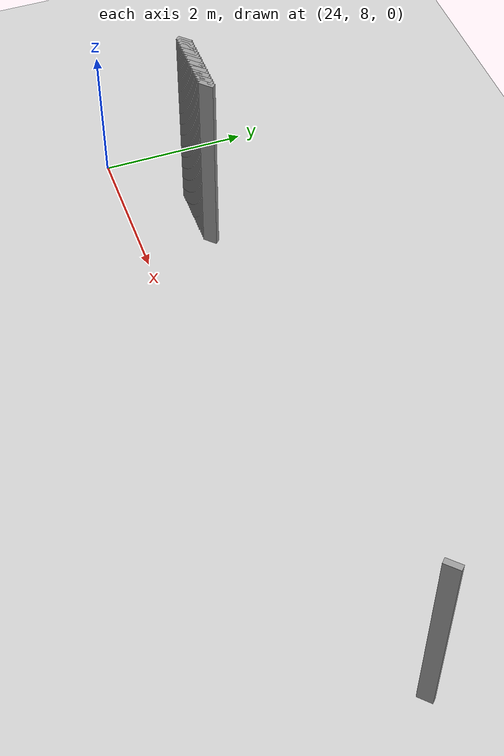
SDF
<sdf version="1.5">
 <world name="default">
  <include><uri>model://ground_plane</uri></include>
  <include><uri>model://sun</uri></include>
  <model name="grey_wall_3583">
   <static>1</static>
   <link name="link">
    <pose>24.95 8.95  1.4 0 0 -0.785398163397</pose>
    <collision name="collision"><geometry><box><size>0.0707106781187 .2  2.8</size></box></geometry></collision>
    <visual name="visual">
     <cast_shadows>0</cast_shadows>
     <geometry><box><size>0.0707106781187 .2  2.8</size></box></geometry>
     <material>
      <script>
       <uri>model://grey_wall/materials/scripts</uri>
       <uri>model://grey_wall/materials/textures</uri>
       <name>vrc/grey_wall</name>
      </script>
     </material>
    </visual>
   </link>
  </model>
  <model name="grey_wall_3584">
   <static>1</static>
   <link name="link">
    <pose>25.0 8.95  1.4 0 0 -0.785398163397</pose>
    <collision name="collision"><geometry><box><size>0.0707106781187 .2  2.8</size></box></geometry></collision>
    <visual name="visual">
     <cast_shadows>0</cast_shadows>
     <geometry><box><size>0.0707106781187 .2  2.8</size></box></geometry>
     <material>
      <script>
       <uri>model://grey_wall/materials/scripts</uri>
       <uri>model://grey_wall/materials/textures</uri>
       <name>vrc/grey_wall</name>
      </script>
     </material>
    </visual>
   </link>
  </model>
  <model name="grey_wall_3585">
   <static>1</static>
   <link name="link">
    <pose>25.05 8.95  1.4 0 0 -0.785398163397</pose>
    <collision name="collision"><geometry><box><size>0.0707106781187 .2  2.8</size></box></geometry></collision>
    <visual name="visual">
     <cast_shadows>0</cast_shadows>
     <geometry><box><size>0.0707106781187 .2  2.8</size></box></geometry>
     <material>
      <script>
       <uri>model://grey_wall/materials/scripts</uri>
       <uri>model://grey_wall/materials/textures</uri>
       <name>vrc/grey_wall</name>
      </script>
     </material>
    </visual>
   </link>
  </model>
  <model name="grey_wall_3586">
   <static>1</static>
   <link name="link">
    <pose>25.1 8.95  1.4 0 0 -0.785398163397</pose>
    <collision name="collision"><geometry><box><size>0.0707106781187 .2  2.8</size></box></geometry></collision>
    <visual name="visual">
     <cast_shadows>0</cast_shadows>
     <geometry><box><size>0.0707106781187 .2  2.8</size></box></geometry>
     <material>
      <script>
       <uri>model://grey_wall/materials/scripts</uri>
       <uri>model://grey_wall/materials/textures</uri>
       <name>vrc/grey_wall</name>
      </script>
     </material>
    </visual>
   </link>
  </model>
  <model name="grey_wall_3587">
   <static>1</static>
   <link name="link">
    <pose>25.15 8.95  1.4 0 0 -0.785398163397</pose>
    <collision name="collision"><geometry><box><size>0.0707106781187 .2  2.8</size></box></geometry></collision>
    <visual name="visual">
     <cast_shadows>0</cast_shadows>
     <geometry><box><size>0.0707106781187 .2  2.8</size></box></geometry>
     <material>
      <script>
       <uri>model://grey_wall/materials/scripts</uri>
       <uri>model://grey_wall/materials/textures</uri>
       <name>vrc/grey_wall</name>
      </script>
     </material>
    </visual>
   </link>
  </model>
  <model name="grey_wall_3588">
   <static>1</static>
   <link name="link">
    <pose>25.2 8.95  1.4 0 0 -0.785398163397</pose>
    <collision name="collision"><geometry><box><size>0.0707106781187 .2  2.8</size></box></geometry></collision>
    <visual name="visual">
     <cast_shadows>0</cast_shadows>
     <geometry><box><size>0.0707106781187 .2  2.8</size></box></geometry>
     <material>
      <script>
       <uri>model://grey_wall/materials/scripts</uri>
       <uri>model://grey_wall/materials/textures</uri>
       <name>vrc/grey_wall</name>
      </script>
     </material>
    </visual>
   </link>
  </model>
  <model name="grey_wall_3589">
   <static>1</static>
   <link name="link">
    <pose>25.25 8.95  1.4 0 0 -0.785398163397</pose>
    <collision name="collision"><geometry><box><size>0.0707106781187 .2  2.8</size></box></geometry></collision>
    <visual name="visual">
     <cast_shadows>0</cast_shadows>
     <geometry><box><size>0.0707106781187 .2  2.8</size></box></geometry>
     <material>
      <script>
       <uri>model://grey_wall/materials/scripts</uri>
       <uri>model://grey_wall/materials/textures</uri>
       <name>vrc/grey_wall</name>
      </script>
     </material>
    </visual>
   </link>
  </model>
  <model name="grey_wall_3590">
   <static>1</static>
   <link name="link">
    <pose>25.3 8.95  1.4 0 0 -0.785398163397</pose>
    <collision name="collision"><geometry><box><size>0.0707106781187 .2  2.8</size></box></geometry></collision>
    <visual name="visual">
     <cast_shadows>0</cast_shadows>
     <geometry><box><size>0.0707106781187 .2  2.8</size></box></geometry>
     <material>
      <script>
       <uri>model://grey_wall/materials/scripts</uri>
       <uri>model://grey_wall/materials/textures</uri>
       <name>vrc/grey_wall</name>
      </script>
     </material>
    </visual>
   </link>
  </model>
  <model name="grey_wall_3591">
   <static>1</static>
   <link name="link">
    <pose>25.35 8.95  1.4 0 0 -0.785398163397</pose>
    <collision name="collision"><geometry><box><size>0.0707106781187 .2  2.8</size></box></geometry></collision>
    <visual name="visual">
     <cast_shadows>0</cast_shadows>
     <geometry><box><size>0.0707106781187 .2  2.8</size></box></geometry>
     <material>
      <script>
       <uri>model://grey_wall/materials/scripts</uri>
       <uri>model://grey_wall/materials/textures</uri>
       <name>vrc/grey_wall</name>
      </script>
     </material>
    </visual>
   </link>
  </model>
  <model name="grey_wall_3592">
   <static>1</static>
   <link name="link">
    <pose>25.4 8.95  1.4 0 0 -0.785398163397</pose>
    <collision name="collision"><geometry><box><size>0.0707106781187 .2  2.8</size></box></geometry></collision>
    <visual name="visual">
     <cast_shadows>0</cast_shadows>
     <geometry><box><size>0.0707106781187 .2  2.8</size></box></geometry>
     <material>
      <script>
       <uri>model://grey_wall/materials/scripts</uri>
       <uri>model://grey_wall/materials/textures</uri>
       <name>vrc/grey_wall</name>
      </script>
     </material>
    </visual>
   </link>
  </model>
  <model name="grey_wall_3593">
   <static>1</static>
   <link name="link">
    <pose>25.45 8.95  1.4 0 0 -0.785398163397</pose>
    <collision name="collision"><geometry><box><size>0.0707106781187 .2  2.8</size></box></geometry></collision>
    <visual name="visual">
     <cast_shadows>0</cast_shadows>
     <geometry><box><size>0.0707106781187 .2  2.8</size></box></geometry>
     <material>
      <script>
       <uri>model://grey_wall/materials/scripts</uri>
       <uri>model://grey_wall/materials/textures</uri>
       <name>vrc/grey_wall</name>
      </script>
     </material>
    </visual>
   </link>
  </model>
  <model name="grey_wall_3594">
   <static>1</static>
   <link name="link">
    <pose>25.5 8.95  1.4 0 0 -0.785398163397</pose>
    <collision name="collision"><geometry><box><size>0.0707106781187 .2  2.8</size></box></geometry></collision>
    <visual name="visual">
     <cast_shadows>0</cast_shadows>
     <geometry><box><size>0.0707106781187 .2  2.8</size></box></geometry>
     <material>
      <script>
       <uri>model://grey_wall/materials/scripts</uri>
       <uri>model://grey_wall/materials/textures</uri>
       <name>vrc/grey_wall</name>
      </script>
     </material>
    </visual>
   </link>
  </model>
  <model name="grey_wall_3595">
   <static>1</static>
   <link name="link">
    <pose>25.55 8.95  1.4 0 0 -0.785398163397</pose>
    <collision name="collision"><geometry><box><size>0.0707106781187 .2  2.8</size></box></geometry></collision>
    <visual name="visual">
     <cast_shadows>0</cast_shadows>
     <geometry><box><size>0.0707106781187 .2  2.8</size></box></geometry>
     <material>
      <script>
       <uri>model://grey_wall/materials/scripts</uri>
       <uri>model://grey_wall/materials/textures</uri>
       <name>vrc/grey_wall</name>
      </script>
     </material>
    </visual>
   </link>
  </model>
  <model name="grey_wall_3596">
   <static>1</static>
   <link name="link">
    <pose>25.6 8.95  1.4 0 0 -0.785398163397</pose>
    <collision name="collision"><geometry><box><size>0.0707106781187 .2  2.8</size></box></geometry></collision>
    <visual name="visual">
     <cast_shadows>0</cast_shadows>
     <geometry><box><size>0.0707106781187 .2  2.8</size></box></geometry>
     <material>
      <script>
       <uri>model://grey_wall/materials/scripts</uri>
       <uri>model://grey_wall/materials/textures</uri>
       <name>vrc/grey_wall</name>
      </script>
     </material>
    </visual>
   </link>
  </model>
  <model name="grey_wall_3597">
   <static>1</static>
   <link name="link">
    <pose>25.65 8.95  1.4 0 0 -0.785398163397</pose>
    <collision name="collision"><geometry><box><size>0.0707106781187 .2  2.8</size></box></geometry></collision>
    <visual name="visual">
     <cast_shadows>0</cast_shadows>
     <geometry><box><size>0.0707106781187 .2  2.8</size></box></geometry>
     <material>
      <script>
       <uri>model://grey_wall/materials/scripts</uri>
       <uri>model://grey_wall/materials/textures</uri>
       <name>vrc/grey_wall</name>
      </script>
     </material>
    </visual>
   </link>
  </model>
  <model name="grey_wall_3598">
   <static>1</static>
   <link name="link">
    <pose>25.7 8.95  1.4 0 0 -0.785398163397</pose>
    <collision name="collision"><geometry><box><size>0.0707106781187 .2  2.8</size></box></geometry></collision>
    <visual name="visual">
     <cast_shadows>0</cast_shadows>
     <geometry><box><size>0.0707106781187 .2  2.8</size></box></geometry>
     <material>
      <script>
       <uri>model://grey_wall/materials/scripts</uri>
       <uri>model://grey_wall/materials/textures</uri>
       <name>vrc/grey_wall</name>
      </script>
     </material>
    </visual>
   </link>
  </model>
  <model name="grey_wall_3599">
   <static>1</static>
   <link name="link">
    <pose>25.75 8.95  1.4 0 0 -0.785398163397</pose>
    <collision name="collision"><geometry><box><size>0.0707106781187 .2  2.8</size></box></geometry></collision>
    <visual name="visual">
     <cast_shadows>0</cast_shadows>
     <geometry><box><size>0.0707106781187 .2  2.8</size></box></geometry>
     <material>
      <script>
       <uri>model://grey_wall/materials/scripts</uri>
       <uri>model://grey_wall/materials/textures</uri>
       <name>vrc/grey_wall</name>
      </script>
     </material>
    </visual>
   </link>
  </model>
  <model name="grey_wall_3600">
   <static>1</static>
   <link name="link">
    <pose>25.8 8.95  1.4 0 0 -0.785398163397</pose>
    <collision name="collision"><geometry><box><size>0.0707106781187 .2  2.8</size></box></geometry></collision>
    <visual name="visual">
     <cast_shadows>0</cast_shadows>
     <geometry><box><size>0.0707106781187 .2  2.8</size></box></geometry>
     <material>
      <script>
       <uri>model://grey_wall/materials/scripts</uri>
       <uri>model://grey_wall/materials/textures</uri>
       <name>vrc/grey_wall</name>
      </script>
     </material>
    </visual>
   </link>
  </model>
  <model name="grey_wall_3601">
   <static>1</static>
   <link name="link">
    <pose>25.85 8.95  1.4 0 0 -0.785398163397</pose>
    <collision name="collision"><geometry><box><size>0.0707106781187 .2  2.8</size></box></geometry></collision>
    <visual name="visual">
     <cast_shadows>0</cast_shadows>
     <geometry><box><size>0.0707106781187 .2  2.8</size></box></geometry>
     <material>
      <script>
       <uri>model://grey_wall/materials/scripts</uri>
       <uri>model://grey_wall/materials/textures</uri>
       <name>vrc/grey_wall</name>
      </script>
     </material>
    </visual>
   </link>
  </model>
  <model name="grey_wall_3602">
   <static>1</static>
   <link name="link">
    <pose>33.1 8.95  1.4 0 0 -0.785398163397</pose>
    <collision name="collision"><geometry><box><size>0.0707106781187 .2  2.8</size></box></geometry></collision>
    <visual name="visual">
     <cast_shadows>0</cast_shadows>
     <geometry><box><size>0.0707106781187 .2  2.8</size></box></geometry>
     <material>
      <script>
       <uri>model://grey_wall/materials/scripts</uri>
       <uri>model://grey_wall/materials/textures</uri>
       <name>vrc/grey_wall</name>
      </script>
     </material>
    </visual>
   </link>
  </model>
 </world>
</sdf>
